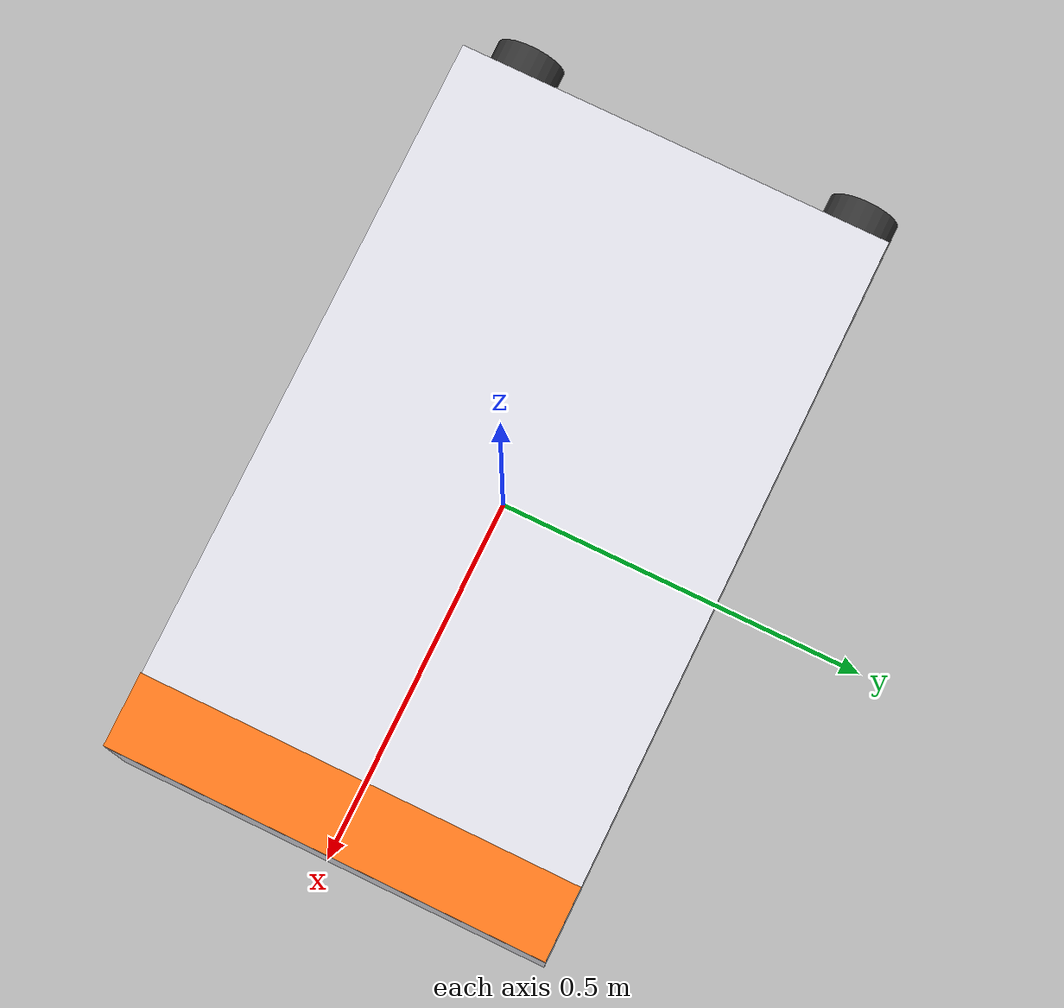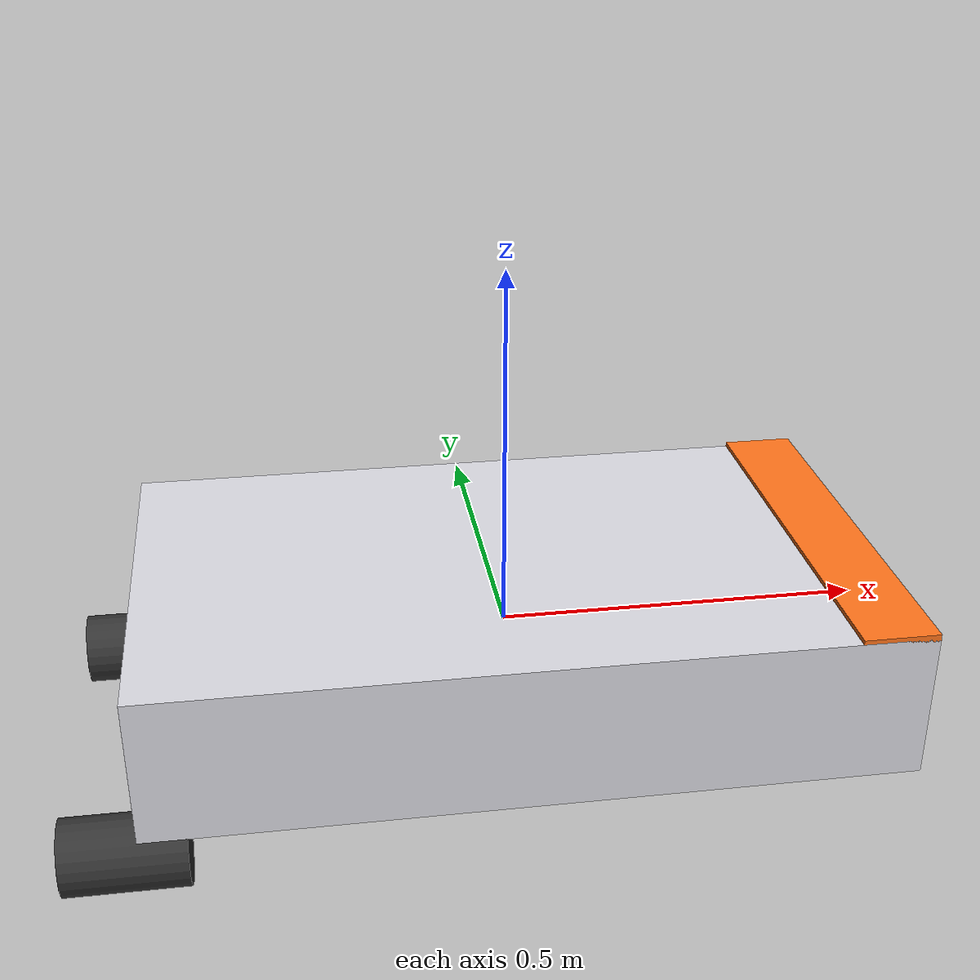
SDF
<?xml version="1.0" ?>
<sdf version="1.9">
  <model name="prop">
    <link name="base_link">
      <inertial>
        <pose>0 0 -0.15 0 0 0</pose>
        <mass>25.0</mass>
        <inertia>
          <ixx>0.833</ixx>
          <iyy>2.167</iyy>
          <izz>2.833</izz>
          <ixy>0</ixy>
          <ixz>0</ixz>
          <iyz>0</iyz>
        </inertia>
      </inertial>

      <!-- Buoyancy comes from the volume of this box: 25 kg of boat in a
           1.0 x 0.6 hull floats with a 4 cm draft. -->
      <collision name="hull_collision">
        <geometry>
          <box>
            <size>1.0 0.6 0.2</size>
          </box>
        </geometry>
      </collision>

      <visual name="hull_visual">
        <geometry>
          <box>
            <size>1.0 0.6 0.2</size>
          </box>
        </geometry>
        <material>
          <ambient>0.85 0.85 0.88 1</ambient>
          <diffuse>0.85 0.85 0.88 1</diffuse>
        </material>
      </visual>

      <!-- A stripe on the bow, so heading is readable in the GUI. -->
      <visual name="bow_visual">
        <pose>0.45 0 0.101 0 0 0</pose>
        <geometry>
          <box>
            <size>0.1 0.6 0.01</size>
          </box>
        </geometry>
        <material>
          <ambient>1.0 0.45 0.1 1</ambient>
          <diffuse>1.0 0.45 0.1 1</diffuse>
        </material>
      </visual>

      <!-- The thrusters, drawn where they sit: aft, 0.25 m either side of the
           centreline and level with the centre of mass. -->
      <visual name="left_thruster_visual">
        <pose>-0.52 0.25 -0.15 0 1.5707963 0</pose>
        <geometry>
          <cylinder>
            <length>0.16</length>
            <radius>0.05</radius>
          </cylinder>
        </geometry>
        <material>
          <ambient>0.2 0.2 0.2 1</ambient>
          <diffuse>0.2 0.2 0.2 1</diffuse>
        </material>
      </visual>

      <visual name="right_thruster_visual">
        <pose>-0.52 -0.25 -0.15 0 1.5707963 0</pose>
        <geometry>
          <cylinder>
            <length>0.16</length>
            <radius>0.05</radius>
          </cylinder>
        </geometry>
        <material>
          <ambient>0.2 0.2 0.2 1</ambient>
          <diffuse>0.2 0.2 0.2 1</diffuse>
        </material>
      </visual>

      <sensor name="imu" type="imu">
        <pose>0.422165 -0.349025 -0.069291 0 0 3.141592653589793</pose>
        <topic>sim/imu</topic>
        <gz_frame_id>imu</gz_frame_id>
        <update_rate>100</update_rate>
        <always_on>1</always_on>
        <imu>
          <orientation_reference_frame>
            <localization>ENU</localization>
          </orientation_reference_frame>
          <angular_velocity>
            <x>
              <noise type="gaussian">
                <stddev>0.004</stddev>
              </noise>
            </x>
            <y>
              <noise type="gaussian">
                <stddev>0.004</stddev>
              </noise>
            </y>
            <z>
              <noise type="gaussian">
                <stddev>0.004</stddev>
              </noise>
            </z>
          </angular_velocity>
          <linear_acceleration>
            <x>
              <noise type="gaussian">
                <stddev>0.03</stddev>
              </noise>
            </x>
            <y>
              <noise type="gaussian">
                <stddev>0.03</stddev>
              </noise>
            </y>
            <z>
              <noise type="gaussian">
                <stddev>0.03</stddev>
              </noise>
            </z>
          </linear_acceleration>
        </imu>
      </sensor>

      <sensor name="gps" type="navsat">
        <topic>sim/gps_raw</topic>
        <gz_frame_id>base_link</gz_frame_id>
        <update_rate>10</update_rate>
        <always_on>1</always_on>
        <navsat>
          <position_sensing>
            <horizontal>
              <noise type="gaussian">
                <stddev>1.8e-07</stddev>
              </noise>
            </horizontal>
            <vertical>
              <noise type="gaussian">
                <stddev>0.06</stddev>
              </noise>
            </vertical>
          </position_sensing>
        </navsat>
      </sensor>

      <sensor name="lidar" type="gpu_lidar">
        <pose>0 0 0.25 0 0 0</pose>
        <topic>lidar/scan</topic>
        <gz_frame_id>lidar_link</gz_frame_id>
        <update_rate>10</update_rate>
        <always_on>1</always_on>
        <visualize>true</visualize>
        <lidar>
          <scan>
            <horizontal>
              <samples>360</samples>
              <resolution>1</resolution>
              <min_angle>-3.14159</min_angle>
              <max_angle>3.14159</max_angle>
            </horizontal>
          </scan>
          <range>
            <min>0.5</min>
            <max>50.0</max>
            <resolution>0.01</resolution>
          </range>
        </lidar>
      </sensor>
    </link>

    <plugin filename="PropThrusters" name="prop_gazebo::PropThrusters">
      <link_name>base_link</link_name>
      <thruster_y>0.25</thruster_y>
      <max_thrust>45.0</max_thrust>
      <topic_left>/prop/thrust/left</topic_left>
      <topic_right>/prop/thrust/right</topic_right>
    </plugin>

    <!-- Damping against the water. Surge is cheap, sway is not: the hull slides
         forwards far more easily than sideways, which is what makes it steer
         like a boat instead of a hovercraft. -->
    <plugin
      filename="gz-sim-hydrodynamics-system"
      name="gz::sim::systems::Hydrodynamics"
    >
      <link_name>base_link</link_name>
      <xU>-8.0</xU>
      <xUabsU>-15.0</xUabsU>
      <yV>-60.0</yV>
      <yVabsV>-180.0</yVabsV>
      <!-- Heave is damped hard: the buoyancy plugin is a stiff spring, and
           left to ring it buzzes the IMU with a couple of m/s^2 of nothing. -->
      <zW>-1500.0</zW>
      <zWabsW>-1500.0</zWabsW>
      <kP>-50.0</kP>
      <kPabsP>-50.0</kPabsP>
      <mQ>-50.0</mQ>
      <mQabsQ>-50.0</mQabsQ>
      <nR>-20.0</nR>
      <nRabsR>-15.0</nRabsR>
    </plugin>

    <!-- Noise free pose and velocity, for scoring a run against the estimate.
         Nothing in the stack is allowed to subscribe to this. -->
    <plugin
      filename="gz-sim-odometry-publisher-system"
      name="gz::sim::systems::OdometryPublisher"
    >
      <odom_frame>map</odom_frame>
      <robot_base_frame>base_link</robot_base_frame>
      <odom_topic>/sim/ground_truth</odom_topic>
      <odom_publish_frequency>30</odom_publish_frequency>
      <dimensions>3</dimensions>
    </plugin>
  </model>
</sdf>
